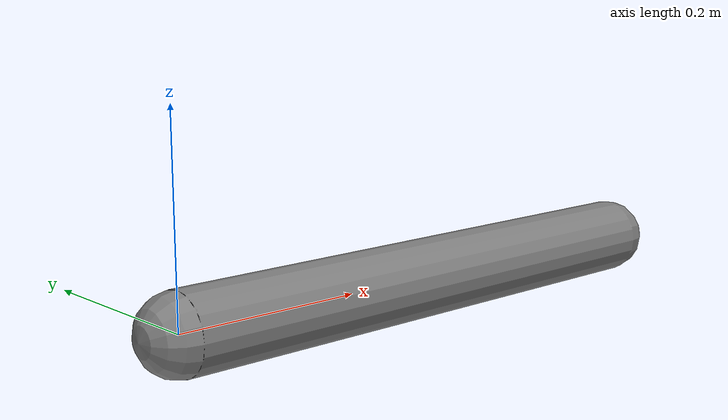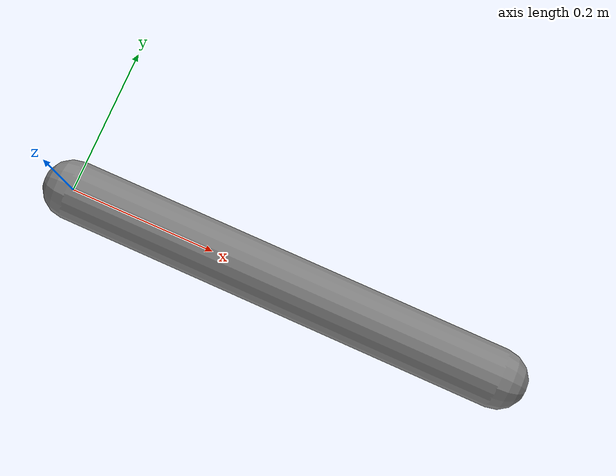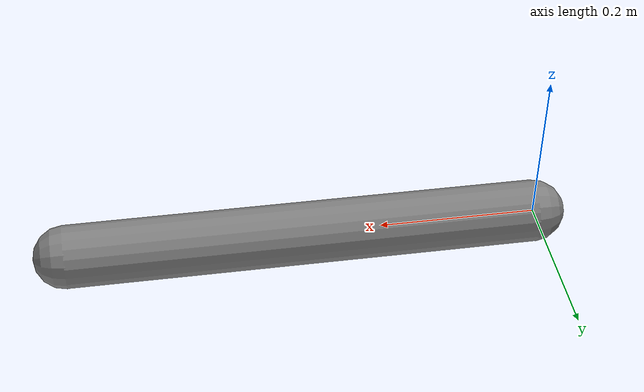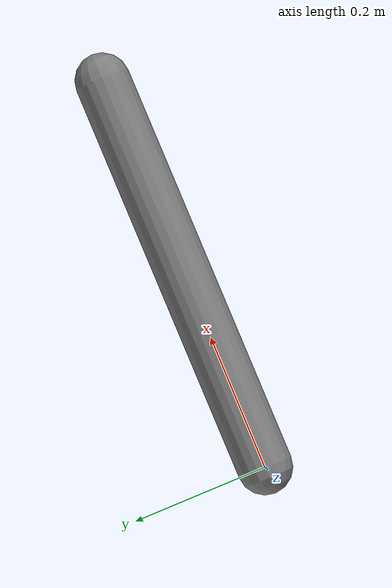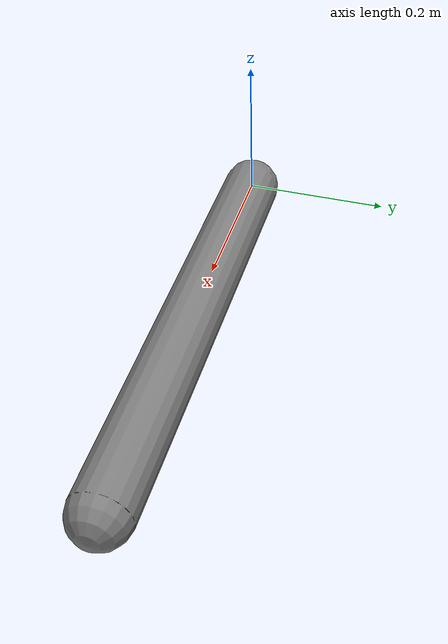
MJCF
<mujoco model="sampled PD">
  <option timestep="0.001" gravity="0 0 0" integrator="implicitfast"/>
  <worldbody>
    <body>
      <joint name="joint" axis="0 0 1" damping="0.05" armature="0.02"/>
      <geom type="capsule" fromto="0 0 0 .6 0 0" size=".04" mass="1"/>
    </body>
  </worldbody>
  <actuator><motor joint="joint" ctrlrange="-3 3" ctrllimited="true"/></actuator>
</mujoco>
